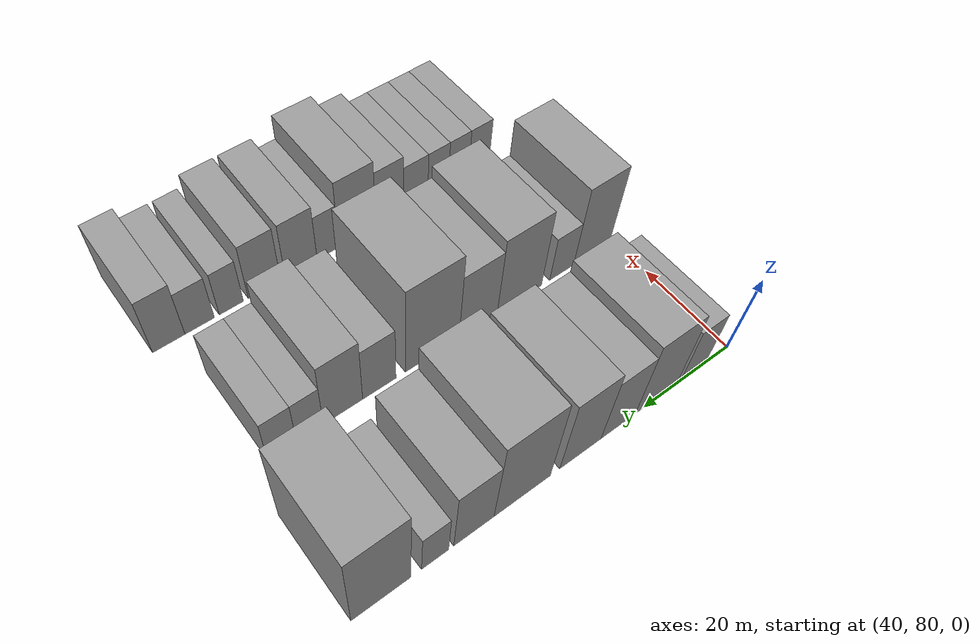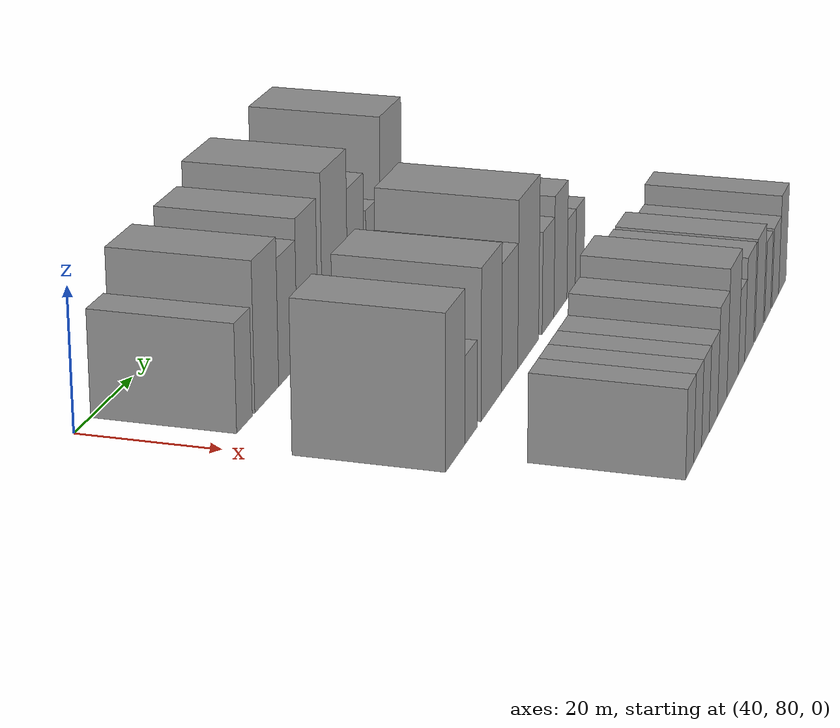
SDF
<sdf version="1.6">
 <world name="default">
  <model name="building_49">
   <static>1</static>
   <pose>50.0000 88.4123 0 0.000000 0.000000 0.000000</pose>
   <link name="link">
    <pose>0 0 7.50 0 0 0</pose>
    <collision name="collision"><geometry><box><size>20.0000 6.0016 15.0000</size></box></geometry></collision>
    <visual name="visual">
     <cast_shadows>0</cast_shadows>
     <geometry><box><size>20.0000 6.0016 15.0000</size></box></geometry>
     <material>
      <script>
       <uri>model://grey_wall/materials/scripts</uri>
       <uri>model://grey_wall/materials/textures</uri>
       <name>vrc/grey_wall</name>
      </script>
     </material>
    </visual>
   </link>
  </model>
  <model name="building_50">
   <static>1</static>
   <pose>50.0000 97.2108 0 0.000000 0.000000 0.000000</pose>
   <link name="link">
    <pose>0 0 10.50 0 0 0</pose>
    <collision name="collision"><geometry><box><size>20.0000 9.5954 21.0000</size></box></geometry></collision>
    <visual name="visual">
     <cast_shadows>0</cast_shadows>
     <geometry><box><size>20.0000 9.5954 21.0000</size></box></geometry>
     <material>
      <script>
       <uri>model://grey_wall/materials/scripts</uri>
       <uri>model://grey_wall/materials/textures</uri>
       <name>vrc/grey_wall</name>
      </script>
     </material>
    </visual>
   </link>
  </model>
  <model name="building_51">
   <static>1</static>
   <pose>50.0000 105.8910 0 0.000000 0.000000 0.000000</pose>
   <link name="link">
    <pose>0 0 9.00 0 0 0</pose>
    <collision name="collision"><geometry><box><size>20.0000 7.7649 18.0000</size></box></geometry></collision>
    <visual name="visual">
     <cast_shadows>0</cast_shadows>
     <geometry><box><size>20.0000 7.7649 18.0000</size></box></geometry>
     <material>
      <script>
       <uri>model://grey_wall/materials/scripts</uri>
       <uri>model://grey_wall/materials/textures</uri>
       <name>vrc/grey_wall</name>
      </script>
     </material>
    </visual>
   </link>
  </model>
  <model name="building_52">
   <static>1</static>
   <pose>50.0000 114.2471 0 0.000000 0.000000 0.000000</pose>
   <link name="link">
    <pose>0 0 10.50 0 0 0</pose>
    <collision name="collision"><geometry><box><size>20.0000 8.9474 21.0000</size></box></geometry></collision>
    <visual name="visual">
     <cast_shadows>0</cast_shadows>
     <geometry><box><size>20.0000 8.9474 21.0000</size></box></geometry>
     <material>
      <script>
       <uri>model://grey_wall/materials/scripts</uri>
       <uri>model://grey_wall/materials/textures</uri>
       <name>vrc/grey_wall</name>
      </script>
     </material>
    </visual>
   </link>
  </model>
  <model name="building_53">
   <static>1</static>
   <pose>50.0000 126.5164 0 0.000000 0.000000 0.000000</pose>
   <link name="link">
    <pose>0 0 12.00 0 0 0</pose>
    <collision name="collision"><geometry><box><size>20.0000 11.5913 24.0000</size></box></geometry></collision>
    <visual name="visual">
     <cast_shadows>0</cast_shadows>
     <geometry><box><size>20.0000 11.5913 24.0000</size></box></geometry>
     <material>
      <script>
       <uri>model://grey_wall/materials/scripts</uri>
       <uri>model://grey_wall/materials/textures</uri>
       <name>vrc/grey_wall</name>
      </script>
     </material>
    </visual>
   </link>
  </model>
  <model name="building_54">
   <static>1</static>
   <pose>50.0000 136.2720 0 0.000000 0.000000 0.000000</pose>
   <link name="link">
    <pose>0 0 9.00 0 0 0</pose>
    <collision name="collision"><geometry><box><size>20.0000 7.9199 18.0000</size></box></geometry></collision>
    <visual name="visual">
     <cast_shadows>0</cast_shadows>
     <geometry><box><size>20.0000 7.9199 18.0000</size></box></geometry>
     <material>
      <script>
       <uri>model://grey_wall/materials/scripts</uri>
       <uri>model://grey_wall/materials/textures</uri>
       <name>vrc/grey_wall</name>
      </script>
     </material>
    </visual>
   </link>
  </model>
  <model name="building_55">
   <static>1</static>
   <pose>50.0000 143.8051 0 0.000000 0.000000 0.000000</pose>
   <link name="link">
    <pose>0 0 6.00 0 0 0</pose>
    <collision name="collision"><geometry><box><size>20.0000 5.1463 12.0000</size></box></geometry></collision>
    <visual name="visual">
     <cast_shadows>0</cast_shadows>
     <geometry><box><size>20.0000 5.1463 12.0000</size></box></geometry>
     <material>
      <script>
       <uri>model://grey_wall/materials/scripts</uri>
       <uri>model://grey_wall/materials/textures</uri>
       <name>vrc/grey_wall</name>
      </script>
     </material>
    </visual>
   </link>
  </model>
  <model name="building_56">
   <static>1</static>
   <pose>50.0000 153.8165 0 0.000000 0.000000 0.000000</pose>
   <link name="link">
    <pose>0 0 12.00 0 0 0</pose>
    <collision name="collision"><geometry><box><size>20.0000 10.8766 24.0000</size></box></geometry></collision>
    <visual name="visual">
     <cast_shadows>0</cast_shadows>
     <geometry><box><size>20.0000 10.8766 24.0000</size></box></geometry>
     <material>
      <script>
       <uri>model://grey_wall/materials/scripts</uri>
       <uri>model://grey_wall/materials/textures</uri>
       <name>vrc/grey_wall</name>
      </script>
     </material>
    </visual>
   </link>
  </model>
  <model name="building_122">
   <static>1</static>
   <pose>79.0000 85.2606 0 0.000000 0.000000 0.000000</pose>
   <link name="link">
    <pose>0 0 10.50 0 0 0</pose>
    <collision name="collision"><geometry><box><size>20.0000 9.0201 21.0000</size></box></geometry></collision>
    <visual name="visual">
     <cast_shadows>0</cast_shadows>
     <geometry><box><size>20.0000 9.0201 21.0000</size></box></geometry>
     <material>
      <script>
       <uri>model://grey_wall/materials/scripts</uri>
       <uri>model://grey_wall/materials/textures</uri>
       <name>vrc/grey_wall</name>
      </script>
     </material>
    </visual>
   </link>
  </model>
  <model name="building_123">
   <static>1</static>
   <pose>79.0000 92.6813 0 0.000000 0.000000 0.000000</pose>
   <link name="link">
    <pose>0 0 6.00 0 0 0</pose>
    <collision name="collision"><geometry><box><size>20.0000 5.8213 12.0000</size></box></geometry></collision>
    <visual name="visual">
     <cast_shadows>0</cast_shadows>
     <geometry><box><size>20.0000 5.8213 12.0000</size></box></geometry>
     <material>
      <script>
       <uri>model://grey_wall/materials/scripts</uri>
       <uri>model://grey_wall/materials/textures</uri>
       <name>vrc/grey_wall</name>
      </script>
     </material>
    </visual>
   </link>
  </model>
  <model name="building_124">
   <static>1</static>
   <pose>79.0000 102.7806 0 0.000000 0.000000 0.000000</pose>
   <link name="link">
    <pose>0 0 10.50 0 0 0</pose>
    <collision name="collision"><geometry><box><size>20.0000 10.3773 21.0000</size></box></geometry></collision>
    <visual name="visual">
     <cast_shadows>0</cast_shadows>
     <geometry><box><size>20.0000 10.3773 21.0000</size></box></geometry>
     <material>
      <script>
       <uri>model://grey_wall/materials/scripts</uri>
       <uri>model://grey_wall/materials/textures</uri>
       <name>vrc/grey_wall</name>
      </script>
     </material>
    </visual>
   </link>
  </model>
  <model name="building_125">
   <static>1</static>
   <pose>79.0000 112.2680 0 0.000000 0.000000 0.000000</pose>
   <link name="link">
    <pose>0 0 9.00 0 0 0</pose>
    <collision name="collision"><geometry><box><size>20.0000 8.5975 18.0000</size></box></geometry></collision>
    <visual name="visual">
     <cast_shadows>0</cast_shadows>
     <geometry><box><size>20.0000 8.5975 18.0000</size></box></geometry>
     <material>
      <script>
       <uri>model://grey_wall/materials/scripts</uri>
       <uri>model://grey_wall/materials/textures</uri>
       <name>vrc/grey_wall</name>
      </script>
     </material>
    </visual>
   </link>
  </model>
  <model name="building_126">
   <static>1</static>
   <pose>79.0000 122.3824 0 0.000000 0.000000 0.000000</pose>
   <link name="link">
    <pose>0 0 12.00 0 0 0</pose>
    <collision name="collision"><geometry><box><size>20.0000 11.6312 24.0000</size></box></geometry></collision>
    <visual name="visual">
     <cast_shadows>0</cast_shadows>
     <geometry><box><size>20.0000 11.6312 24.0000</size></box></geometry>
     <material>
      <script>
       <uri>model://grey_wall/materials/scripts</uri>
       <uri>model://grey_wall/materials/textures</uri>
       <name>vrc/grey_wall</name>
      </script>
     </material>
    </visual>
   </link>
  </model>
  <model name="building_127">
   <static>1</static>
   <pose>79.0000 133.6462 0 0.000000 0.000000 0.000000</pose>
   <link name="link">
    <pose>0 0 7.50 0 0 0</pose>
    <collision name="collision"><geometry><box><size>20.0000 6.8965 15.0000</size></box></geometry></collision>
    <visual name="visual">
     <cast_shadows>0</cast_shadows>
     <geometry><box><size>20.0000 6.8965 15.0000</size></box></geometry>
     <material>
      <script>
       <uri>model://grey_wall/materials/scripts</uri>
       <uri>model://grey_wall/materials/textures</uri>
       <name>vrc/grey_wall</name>
      </script>
     </material>
    </visual>
   </link>
  </model>
  <model name="building_128">
   <static>1</static>
   <pose>79.0000 141.0419 0 0.000000 0.000000 0.000000</pose>
   <link name="link">
    <pose>0 0 9.00 0 0 0</pose>
    <collision name="collision"><geometry><box><size>20.0000 7.8948 18.0000</size></box></geometry></collision>
    <visual name="visual">
     <cast_shadows>0</cast_shadows>
     <geometry><box><size>20.0000 7.8948 18.0000</size></box></geometry>
     <material>
      <script>
       <uri>model://grey_wall/materials/scripts</uri>
       <uri>model://grey_wall/materials/textures</uri>
       <name>vrc/grey_wall</name>
      </script>
     </material>
    </visual>
   </link>
  </model>
  <model name="building_129">
   <static>1</static>
   <pose>79.0000 147.6118 0 0.000000 0.000000 0.000000</pose>
   <link name="link">
    <pose>0 0 6.00 0 0 0</pose>
    <collision name="collision"><geometry><box><size>20.0000 5.2451 12.0000</size></box></geometry></collision>
    <visual name="visual">
     <cast_shadows>0</cast_shadows>
     <geometry><box><size>20.0000 5.2451 12.0000</size></box></geometry>
     <material>
      <script>
       <uri>model://grey_wall/materials/scripts</uri>
       <uri>model://grey_wall/materials/textures</uri>
       <name>vrc/grey_wall</name>
      </script>
     </material>
    </visual>
   </link>
  </model>
  <model name="building_130">
   <static>1</static>
   <pose>79.0000 153.0035 0 0.000000 0.000000 0.000000</pose>
   <link name="link">
    <pose>0 0 6.00 0 0 0</pose>
    <collision name="collision"><geometry><box><size>20.0000 5.5384 12.0000</size></box></geometry></collision>
    <visual name="visual">
     <cast_shadows>0</cast_shadows>
     <geometry><box><size>20.0000 5.5384 12.0000</size></box></geometry>
     <material>
      <script>
       <uri>model://grey_wall/materials/scripts</uri>
       <uri>model://grey_wall/materials/textures</uri>
       <name>vrc/grey_wall</name>
      </script>
     </material>
    </visual>
   </link>
  </model>
  <model name="building_197">
   <static>1</static>
   <pose>108.0000 88.9772 0 0.000000 0.000000 0.000000</pose>
   <link name="link">
    <pose>0 0 6.00 0 0 0</pose>
    <collision name="collision"><geometry><box><size>20.0000 5.1878 12.0000</size></box></geometry></collision>
    <visual name="visual">
     <cast_shadows>0</cast_shadows>
     <geometry><box><size>20.0000 5.1878 12.0000</size></box></geometry>
     <material>
      <script>
       <uri>model://grey_wall/materials/scripts</uri>
       <uri>model://grey_wall/materials/textures</uri>
       <name>vrc/grey_wall</name>
      </script>
     </material>
    </visual>
   </link>
  </model>
  <model name="building_198">
   <static>1</static>
   <pose>108.0000 94.0999 0 0.000000 0.000000 0.000000</pose>
   <link name="link">
    <pose>0 0 6.00 0 0 0</pose>
    <collision name="collision"><geometry><box><size>20.0000 5.0576 12.0000</size></box></geometry></collision>
    <visual name="visual">
     <cast_shadows>0</cast_shadows>
     <geometry><box><size>20.0000 5.0576 12.0000</size></box></geometry>
     <material>
      <script>
       <uri>model://grey_wall/materials/scripts</uri>
       <uri>model://grey_wall/materials/textures</uri>
       <name>vrc/grey_wall</name>
      </script>
     </material>
    </visual>
   </link>
  </model>
  <model name="building_199">
   <static>1</static>
   <pose>108.0000 99.1469 0 0.000000 0.000000 0.000000</pose>
   <link name="link">
    <pose>0 0 6.00 0 0 0</pose>
    <collision name="collision"><geometry><box><size>20.0000 5.0362 12.0000</size></box></geometry></collision>
    <visual name="visual">
     <cast_shadows>0</cast_shadows>
     <geometry><box><size>20.0000 5.0362 12.0000</size></box></geometry>
     <material>
      <script>
       <uri>model://grey_wall/materials/scripts</uri>
       <uri>model://grey_wall/materials/textures</uri>
       <name>vrc/grey_wall</name>
      </script>
     </material>
    </visual>
   </link>
  </model>
  <model name="building_200">
   <static>1</static>
   <pose>108.0000 104.5587 0 0.000000 0.000000 0.000000</pose>
   <link name="link">
    <pose>0 0 6.00 0 0 0</pose>
    <collision name="collision"><geometry><box><size>20.0000 5.7875 12.0000</size></box></geometry></collision>
    <visual name="visual">
     <cast_shadows>0</cast_shadows>
     <geometry><box><size>20.0000 5.7875 12.0000</size></box></geometry>
     <material>
      <script>
       <uri>model://grey_wall/materials/scripts</uri>
       <uri>model://grey_wall/materials/textures</uri>
       <name>vrc/grey_wall</name>
      </script>
     </material>
    </visual>
   </link>
  </model>
  <model name="building_201">
   <static>1</static>
   <pose>108.0000 110.7337 0 0.000000 0.000000 0.000000</pose>
   <link name="link">
    <pose>0 0 7.50 0 0 0</pose>
    <collision name="collision"><geometry><box><size>20.0000 6.5625 15.0000</size></box></geometry></collision>
    <visual name="visual">
     <cast_shadows>0</cast_shadows>
     <geometry><box><size>20.0000 6.5625 15.0000</size></box></geometry>
     <material>
      <script>
       <uri>model://grey_wall/materials/scripts</uri>
       <uri>model://grey_wall/materials/textures</uri>
       <name>vrc/grey_wall</name>
      </script>
     </material>
    </visual>
   </link>
  </model>
  <model name="building_202">
   <static>1</static>
   <pose>108.0000 118.2433 0 0.000000 0.000000 0.000000</pose>
   <link name="link">
    <pose>0 0 9.00 0 0 0</pose>
    <collision name="collision"><geometry><box><size>20.0000 8.4567 18.0000</size></box></geometry></collision>
    <visual name="visual">
     <cast_shadows>0</cast_shadows>
     <geometry><box><size>20.0000 8.4567 18.0000</size></box></geometry>
     <material>
      <script>
       <uri>model://grey_wall/materials/scripts</uri>
       <uri>model://grey_wall/materials/textures</uri>
       <name>vrc/grey_wall</name>
      </script>
     </material>
    </visual>
   </link>
  </model>
  <model name="building_203">
   <static>1</static>
   <pose>108.0000 124.8720 0 0.000000 0.000000 0.000000</pose>
   <link name="link">
    <pose>0 0 6.00 0 0 0</pose>
    <collision name="collision"><geometry><box><size>20.0000 4.8008 12.0000</size></box></geometry></collision>
    <visual name="visual">
     <cast_shadows>0</cast_shadows>
     <geometry><box><size>20.0000 4.8008 12.0000</size></box></geometry>
     <material>
      <script>
       <uri>model://grey_wall/materials/scripts</uri>
       <uri>model://grey_wall/materials/textures</uri>
       <name>vrc/grey_wall</name>
      </script>
     </material>
    </visual>
   </link>
  </model>
  <model name="building_204">
   <static>1</static>
   <pose>108.0000 130.7528 0 0.000000 0.000000 0.000000</pose>
   <link name="link">
    <pose>0 0 7.50 0 0 0</pose>
    <collision name="collision"><geometry><box><size>20.0000 6.9608 15.0000</size></box></geometry></collision>
    <visual name="visual">
     <cast_shadows>0</cast_shadows>
     <geometry><box><size>20.0000 6.9608 15.0000</size></box></geometry>
     <material>
      <script>
       <uri>model://grey_wall/materials/scripts</uri>
       <uri>model://grey_wall/materials/textures</uri>
       <name>vrc/grey_wall</name>
      </script>
     </material>
    </visual>
   </link>
  </model>
  <model name="building_205">
   <static>1</static>
   <pose>108.0000 138.6523 0 0.000000 0.000000 0.000000</pose>
   <link name="link">
    <pose>0 0 7.50 0 0 0</pose>
    <collision name="collision"><geometry><box><size>20.0000 6.8383 15.0000</size></box></geometry></collision>
    <visual name="visual">
     <cast_shadows>0</cast_shadows>
     <geometry><box><size>20.0000 6.8383 15.0000</size></box></geometry>
     <material>
      <script>
       <uri>model://grey_wall/materials/scripts</uri>
       <uri>model://grey_wall/materials/textures</uri>
       <name>vrc/grey_wall</name>
      </script>
     </material>
    </visual>
   </link>
  </model>
  <model name="building_206">
   <static>1</static>
   <pose>108.0000 145.5595 0 0.000000 0.000000 0.000000</pose>
   <link name="link">
    <pose>0 0 6.00 0 0 0</pose>
    <collision name="collision"><geometry><box><size>20.0000 4.9761 12.0000</size></box></geometry></collision>
    <visual name="visual">
     <cast_shadows>0</cast_shadows>
     <geometry><box><size>20.0000 4.9761 12.0000</size></box></geometry>
     <material>
      <script>
       <uri>model://grey_wall/materials/scripts</uri>
       <uri>model://grey_wall/materials/textures</uri>
       <name>vrc/grey_wall</name>
      </script>
     </material>
    </visual>
   </link>
  </model>
  <model name="building_207">
   <static>1</static>
   <pose>108.0000 151.9991 0 0.000000 0.000000 0.000000</pose>
   <link name="link">
    <pose>0 0 6.00 0 0 0</pose>
    <collision name="collision"><geometry><box><size>20.0000 5.9031 12.0000</size></box></geometry></collision>
    <visual name="visual">
     <cast_shadows>0</cast_shadows>
     <geometry><box><size>20.0000 5.9031 12.0000</size></box></geometry>
     <material>
      <script>
       <uri>model://grey_wall/materials/scripts</uri>
       <uri>model://grey_wall/materials/textures</uri>
       <name>vrc/grey_wall</name>
      </script>
     </material>
    </visual>
   </link>
  </model>
  <model name="building_208">
   <static>1</static>
   <pose>108.0000 158.1301 0 0.000000 0.000000 0.000000</pose>
   <link name="link">
    <pose>0 0 7.50 0 0 0</pose>
    <collision name="collision"><geometry><box><size>20.0000 6.3589 15.0000</size></box></geometry></collision>
    <visual name="visual">
     <cast_shadows>0</cast_shadows>
     <geometry><box><size>20.0000 6.3589 15.0000</size></box></geometry>
     <material>
      <script>
       <uri>model://grey_wall/materials/scripts</uri>
       <uri>model://grey_wall/materials/textures</uri>
       <name>vrc/grey_wall</name>
      </script>
     </material>
    </visual>
   </link>
  </model>
 </world>
</sdf>
